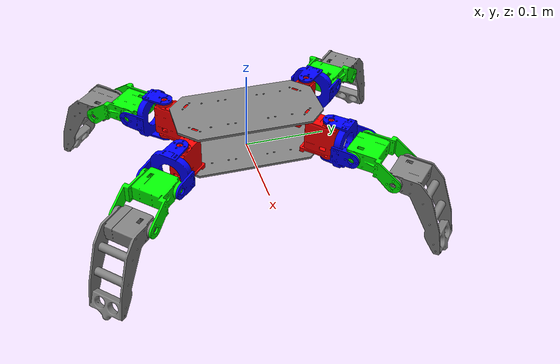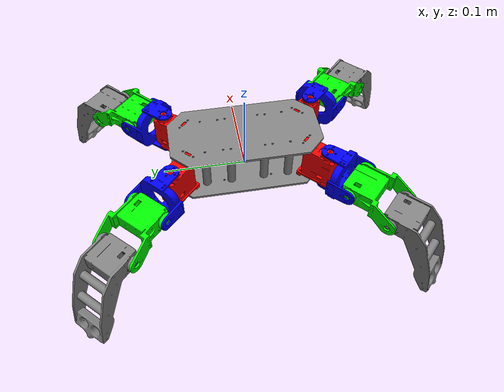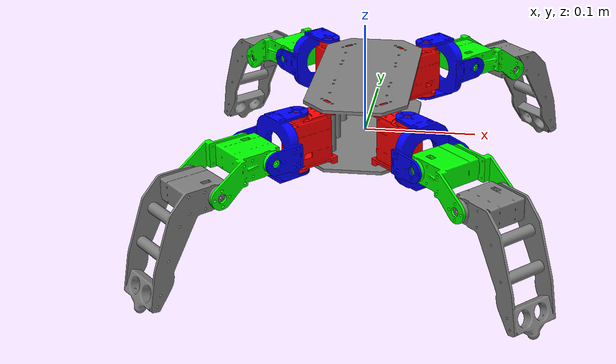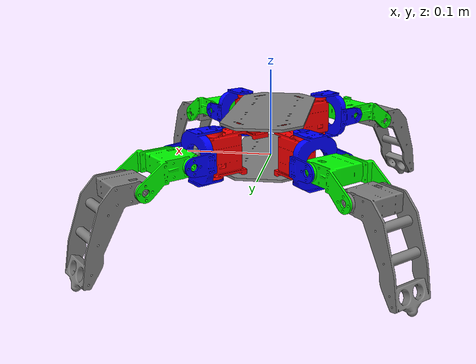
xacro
<?xml version="1.0"?>
<robot name="quaro" xmlns:xacro="http://ros.org/wiki/xacro">

  <!-- Various constant definitions -->
  <xacro:include filename='$(find quaro_description)/urdf/common/constants.xacro'/>
  <!-- Material Colors -->
  <xacro:include filename="$(find quaro_description)/urdf/common/colors.xacro"/>
  <!-- Leg macro -->
  <xacro:include filename="$(find quaro_description)/urdf/leg/leg.0.0.xacro"/>
  <!-- Base Link -->
  <link name="base_link">
    <visual>
      <geometry>
        <mesh filename="package://quaro_description/meshes/body.stl" scale="${scale} ${scale} ${scale}"/>
      </geometry>
      <origin xyz="0 0 0" rpy="-${pi/2} 0 0"/>
      <material name="grey">
        <color rgba="0.5 0.5 0.5 1"/>
      </material>
    </visual>
  </link>

  <!-- Chain 1 -->
  <xacro:leg n="1" parent="base_link" xyz="0.0470 0.0920 0.0257" rpy="${pi/2} 0 ${pi/4}"/>
  <!-- Chain 2 -->
  <xacro:leg n="2" parent="base_link" xyz="-0.0470 0.0920 0.0257" rpy="${pi/2} 0 ${3*pi/4}"/>
  <!-- Chain 3 -->
  <xacro:leg n="3" parent="base_link" xyz="0.0470 -0.0920 0.0257" rpy="${pi/2} 0 -${pi/4}"/>
  <!-- Chain 4 -->
  <xacro:leg n="4" parent="base_link" xyz="-0.0470 -0.0920 0.0257" rpy="${pi/2} 0 -${3*pi/4}"/>

</robot>

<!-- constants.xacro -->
<robot name="quaro-leg" xmlns:xacro="http://ros.org/wiki/xacro">
  <!-- Pi is already defined -->
  <xacro:property name="scale" value="${1e-3}"/>
</robot>

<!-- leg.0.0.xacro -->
<robot name="quaro-leg" xmlns:xacro="http://ros.org/wiki/xacro">
  <xacro:property name="effor" value="1.47"/>
  <xacro:property name="zero" value="0.0"/>
  <xacro:property name="velocity" value="0.1"/>

  <xacro:macro name="leg" params="n xyz rpy parent">

  <joint name="leg${n}_servo1_joint" type="fixed">
    <parent link="${parent}"/>
    <child link="leg${n}_servo1"/>
    <origin xyz="${xyz}" rpy="${rpy}"/>
  </joint>

  <link name="leg${n}_servo1">
    <visual>
      <geometry>
        <mesh filename="package://quaro_description/meshes/servo-hip.stl" scale="${scale} ${scale} ${scale}"/>
      </geometry>
      <origin xyz="0 0 0" rpy="0 0 0"/>
      <material name="red">
        <color rgba="1 0 0 1"/>
      </material>
    </visual>
  </link>

  <!-- Leg Joint 1 -->
  <joint name="leg${n}_joint1" type="revolute">
    <parent link="leg${n}_servo1"/>
    <child link="leg${n}_link1"/>
    <origin xyz="0 0 0" rpy="0 0 0"/>
    <axis xyz="0 1 0"/>
    <limit effort="100.0" velocity="1.0" lower="-${2*pi/3}" upper="${2*pi/3}"/>
  </joint>

  <link name="leg${n}_link1">
    <visual>
      <geometry>
        <mesh filename="package://quaro_description/meshes/hip.stl" scale="${scale} ${scale} ${scale}"/>
      </geometry>
      <origin xyz="0 0 0" rpy="${pi/2} 0 ${pi/2}"/>
      <material name="blue">
        <color rgba="0 0 1 1"/>
      </material>
    </visual>
  </link>

  <joint name="leg${n}_servo2_joint" type="revolute">
    <parent link="leg${n}_link1"/>
    <child link="leg${n}_link2"/>
    <origin xyz="0.04 0 0" rpy="-${pi/2} 0 ${pi}"/>
    <axis xyz="0 1 0"/>
    <limit effort="100.0" velocity="1.0" lower="-${2*pi/3}" upper="${2*pi/3}"/>
  </joint>

  <link name="leg${n}_link2">
    <visual>
      <geometry>
        <mesh filename="package://quaro_description/meshes/knee.stl" scale="${scale} ${scale} ${scale}"/>
      </geometry>
      <origin xyz="0 0 0" rpy="0 0 0"/>
      <material name="green">
        <color rgba="0 1 0 1"/>
      </material>
    </visual>
  </link>

  <joint name="leg${n}_servo3_joint" type="revolute">
    <parent link="leg${n}_link2"/>
    <child link="leg${n}_link3"/>
    <origin xyz="-0.054 0 0.015" rpy="${pi} 0 0"/>
    <axis xyz="0 1 0"/>
    <limit effort="100.0" velocity="1.0" lower="-${2*pi/3}" upper="${2*pi/3}"/>
  </joint>

  <link name="leg${n}_link3">
    <visual>
      <geometry>
        <mesh filename="package://quaro_description/meshes/shin.stl" scale="${scale} ${scale} ${scale}"/>
      </geometry>
      <origin xyz="0 0 0" rpy="0 0 0"/>
      <material name="grey">
        <color rgba="0.5 0.5 0.5 1"/>
      </material>
    </visual>
  </link>
  </xacro:macro>
</robot>
